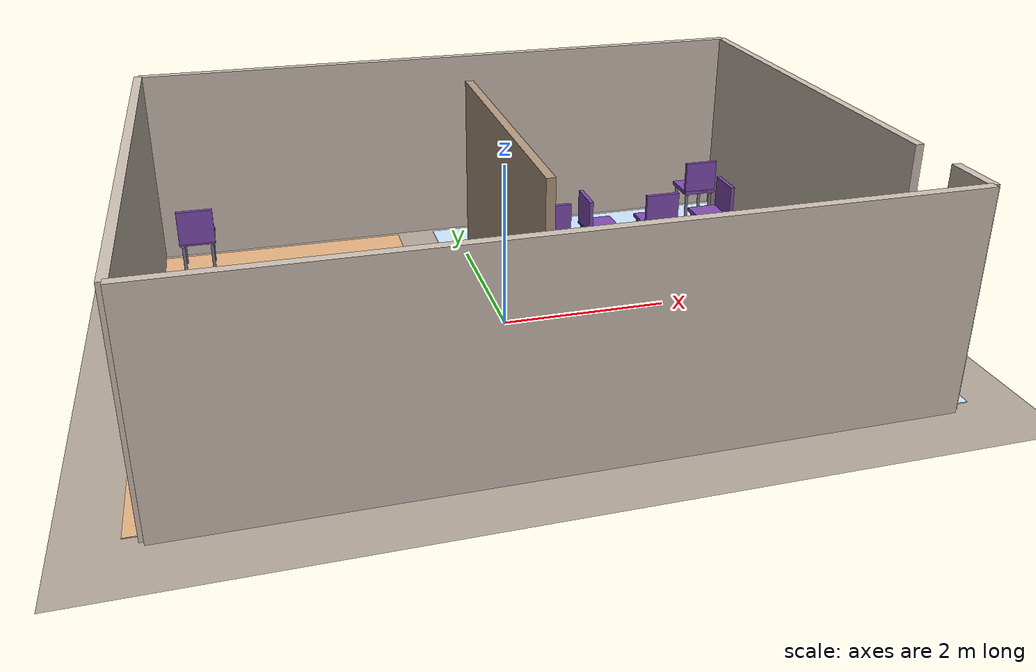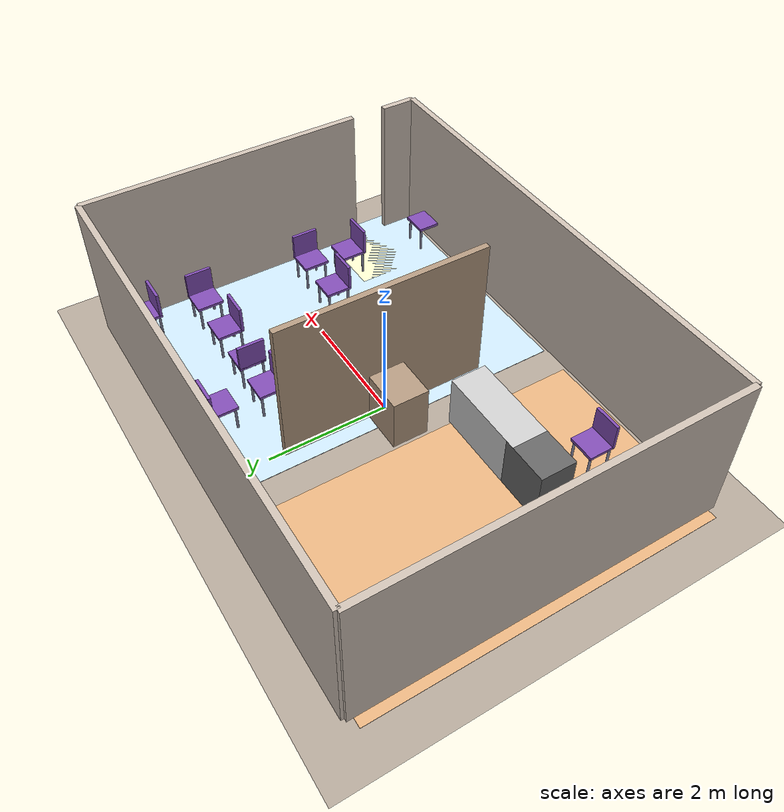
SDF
<?xml version='1.0'?>
<sdf version='1.6'>
  <world name='restaurant_world'>
    <gravity>0 0 -9.8</gravity>
    <magnetic_field>6e-06 2.3e-05 -4.2e-05</magnetic_field>

    <!-- Restaurant lighting -->
    <light name='main_light' type='directional'>
      <cast_shadows>true</cast_shadows>
      <pose>0 0 10 0 0 0</pose>
      <diffuse>0.9 0.85 0.8 1</diffuse>
      <specular>0.3 0.3 0.3 1</specular>
      <attenuation>
        <range>1000</range>
        <constant>0.9</constant>
        <linear>0.01</linear>
        <quadratic>0.001</quadratic>
      </attenuation>
      <direction>-0.3 0.2 -0.9</direction>
    </light>

    <!-- Ambient restaurant lighting -->
    <light name='ambient_light' type='directional'>
      <cast_shadows>false</cast_shadows>
      <pose>0 0 8 0 0 0</pose>
      <diffuse>0.4 0.4 0.5 1</diffuse>
      <specular>0.1 0.1 0.1 1</specular>
      <attenuation>
        <range>1000</range>
        <constant>0.95</constant>
        <linear>0.005</linear>
        <quadratic>0.0005</quadratic>
      </attenuation>
      <direction>0 0 -1</direction>
    </light>

    <!-- Simple ground plane -->
    <model name='ground_plane'>
      <static>true</static>
      <link name='link'>
        <collision name='collision'>
          <geometry>
            <plane>
              <normal>0 0 1</normal>
              <size>100 100</size>
            </plane>
          </geometry>
        </collision>
        <visual name='visual'>
          <geometry>
            <plane>
              <normal>0 0 1</normal>
              <size>100 100</size>
            </plane>
          </geometry>
          <material>
            <ambient>0.8 0.75 0.7 1</ambient>
            <diffuse>0.7 0.65 0.6 1</diffuse>
            <specular>0.1 0.1 0.1 1</specular>
          </material>
        </visual>
      </link>
    </model>

    <!-- Walls: 8m x 6m interior -->
    <model name='walls'>
      <static>true</static>
      <link name='walls_link'>
        <!-- North wall -->
        <collision name='north_col'>
          <geometry><box><size>8 0.1 2.5</size></box></geometry>
          <pose>0 3.0 1.25 0 0 0</pose>
        </collision>
        <visual name='north_vis'>
          <geometry><box><size>8 0.1 2.5</size></box></geometry>
          <pose>0 3.0 1.25 0 0 0</pose>
          <material>
            <ambient>0.9 0.85 0.8 1</ambient>
            <diffuse>0.8 0.75 0.7 1</diffuse>
            <specular>0.1 0.1 0.1 1</specular>
          </material>
        </visual>
        <!-- South wall -->
        <collision name='south_col'>
          <geometry><box><size>8 0.1 2.5</size></box></geometry>
          <pose>0 -3.0 1.25 0 0 0</pose>
        </collision>
        <visual name='south_vis'>
          <geometry><box><size>8 0.1 2.5</size></box></geometry>
          <pose>0 -3.0 1.25 0 0 0</pose>
          <material>
            <ambient>0.9 0.85 0.8 1</ambient>
            <diffuse>0.8 0.75 0.7 1</diffuse>
            <specular>0.1 0.1 0.1 1</specular>
          </material>
        </visual>
        <!-- West wall -->
        <collision name='west_col'>
          <geometry><box><size>0.1 6 2.5</size></box></geometry>
          <pose>-4.0 0 1.25 0 0 0</pose>
        </collision>
        <visual name='west_vis'>
          <geometry><box><size>0.1 6 2.5</size></box></geometry>
          <pose>-4.0 0 1.25 0 0 0</pose>
          <material>
            <ambient>0.9 0.85 0.8 1</ambient>
            <diffuse>0.8 0.75 0.7 1</diffuse>
            <specular>0.1 0.1 0.1 1</specular>
          </material>
        </visual>
        <!-- East wall (with 1.2m doorway at y=-2.5) -->
        <collision name='east_upper_col'>
          <geometry><box><size>0.1 4.8 2.5</size></box></geometry>
          <pose>4.0 0.6 1.25 0 0 0</pose>
        </collision>
        <collision name='east_lower_col'>
          <geometry><box><size>0.1 0.6 2.5</size></box></geometry>
          <pose>4.0 -2.7 1.25 0 0 0</pose>
        </collision>
        <visual name='east_vis_a'>
          <geometry><box><size>0.1 4.8 2.5</size></box></geometry>
          <pose>4.0 0.6 1.25 0 0 0</pose>
          <material>
            <ambient>0.9 0.85 0.8 1</ambient>
            <diffuse>0.8 0.75 0.7 1</diffuse>
            <specular>0.1 0.1 0.1 1</specular>
          </material>
        </visual>
        <visual name='east_vis_b'>
          <geometry><box><size>0.1 0.6 2.5</size></box></geometry>
          <pose>4.0 -2.7 1.25 0 0 0</pose>
          <material>
            <ambient>0.9 0.85 0.8 1</ambient>
            <diffuse>0.8 0.75 0.7 1</diffuse>
            <specular>0.1 0.1 0.1 1</specular>
          </material>
        </visual>
      </link>
    </model>

    <!-- Interior walls and dividers -->
    <!-- Kitchen divider wall (separates kitchen from dining) -->
    <model name='kitchen_divider'>
      <static>true</static>
      <allow_auto_disable>false</allow_auto_disable>
      <link name='divider_link'>
        <kinematic>true</kinematic>
        <collision name='divider_col'>
          <geometry><box><size>0.1 3.5 2.5</size></box></geometry>
          <pose>0 0 1.25 0 0 0</pose>
        </collision>
        <visual name='divider_vis'>
          <geometry><box><size>0.1 3.5 2.5</size></box></geometry>
          <pose>0 0 1.25 0 0 0</pose>
          <material>
            <ambient>0.8 0.7 0.6 1</ambient>
            <diffuse>0.7 0.6 0.5 1</diffuse>
            <specular>0.1 0.1 0.1 1</specular>
          </material>
        </visual>
        <!-- Service opening in divider -->
        <collision name='opening_col_left'>
          <geometry><box><size>0.1 0.8 2.5</size></box></geometry>
          <pose>0 1.35 1.25 0 0 0</pose>
        </collision>
        <collision name='opening_col_right'>
          <geometry><box><size>0.1 0.8 2.5</size></box></geometry>
          <pose>0 -1.35 1.25 0 0 0</pose>
        </collision>
      </link>
    </model>

    <!-- Service counter -->
    <model name='service_counter'>
      <static>true</static>
      <allow_auto_disable>false</allow_auto_disable>
      <link name='counter_link'>
        <kinematic>true</kinematic>
        <collision name='counter_col'>
          <geometry><box><size>1.5 0.6 0.9</size></box></geometry>
          <pose>0 0 0.45 0 0 0</pose>
        </collision>
        <visual name='counter_vis'>
          <geometry><box><size>1.5 0.6 0.9</size></box></geometry>
          <pose>0 0 0.45 0 0 0</pose>
          <material>
            <ambient>0.6 0.5 0.4 1</ambient>
            <diffuse>0.7 0.6 0.5 1</diffuse>
            <specular>0.2 0.2 0.2 1</specular>
          </material>
        </visual>
      </link>
    </model>

    <!-- Zone markers -->
    <!-- Kitchen zone - left side -->
    <model name='kitchen_zone'>
      <static>true</static>
      <allow_auto_disable>false</allow_auto_disable>
      <pose>-2.5 0 -0.01 0 0 0</pose>
      <link name='zone'>
        <kinematic>true</kinematic>
        <visual name='floor_mark'>
          <geometry><box><size>3.4 5.8 0.02</size></box></geometry>
          <pose>0 0 0 0 0 0</pose>
          <material>
            <ambient>0.8 0.6 0.4 1</ambient>
            <diffuse>0.9 0.7 0.5 1</diffuse>
            <specular>0.2 0.2 0.2 1</specular>
          </material>
        </visual>
        <collision name='col'>
          <geometry><box><size>3.4 5.8 0.02</size></box></geometry>
          <pose>0 0 0 0 0 0</pose>
        </collision>
      </link>
    </model>

    <!-- Dining zone - right side -->
    <model name='dining_zone'>
      <static>true</static>
      <allow_auto_disable>false</allow_auto_disable>
      <pose>1.975 0 -0.01 0 0 0</pose>
      <link name='zone'>
        <kinematic>true</kinematic>
        <visual name='floor_mark'>
          <geometry><box><size>4.55 5.8 0.02</size></box></geometry>
          <pose>0 0 0 0 0 0</pose>
          <material>
            <ambient>0.7 0.8 0.9 1</ambient>
            <diffuse>0.8 0.9 1.0 1</diffuse>
            <specular>0.1 0.1 0.1 1</specular>
          </material>
        </visual>
        <collision name='col'>
          <geometry><box><size>4.55 5.8 0.02</size></box></geometry>
          <pose>0 0 0 0 0 0</pose>
        </collision>
      </link>
    </model>

    <!-- Entrance zone - near door -->
    <model name='entrance_zone'>
      <static>true</static>
      <allow_auto_disable>false</allow_auto_disable>
      <pose>3.5 -2 -0.01 0 0 0</pose>
      <link name='zone'>
        <kinematic>true</kinematic>
        <visual name='floor_mark'>
          <geometry><box><size>1.5 1.5 0.02</size></box></geometry>
          <pose>0 0 0 0 0 0</pose>
          <material>
            <ambient>0.9 0.9 0.7 1</ambient>
            <diffuse>1.0 1.0 0.8 1</diffuse>
            <specular>0.1 0.1 0.1 1</specular>
          </material>
        </visual>
        <collision name='col'>
          <geometry><box><size>1.5 1.5 0.02</size></box></geometry>
          <pose>0 0 0 0 0 0</pose>
        </collision>
      </link>
    </model>

    <!-- Dining Area Tables (right side - dining zone) -->
    <include>
      <name>table1</name>
      <uri>file:///home/jao/Desktop/ITDS331_ROS2_FINAL_EXAM_MODULE/ros2/install/restaurant_world/share/restaurant_world/models/table/model.sdf</uri>
      <pose>2.5 1.5 0 0 0 0</pose>
    </include>
    <include>
      <name>table2</name>
      <uri>file:///home/jao/Desktop/ITDS331_ROS2_FINAL_EXAM_MODULE/ros2/install/restaurant_world/share/restaurant_world/models/table/model.sdf</uri>
      <pose>2.5 -0.5 0 0 0 0</pose>
    </include>
    <include>
      <name>table3</name>
      <uri>file:///home/jao/Desktop/ITDS331_ROS2_FINAL_EXAM_MODULE/ros2/install/restaurant_world/share/restaurant_world/models/table/model.sdf</uri>
      <pose>1.0 1.5 0 0 0 0</pose>
    </include>

    <!-- Chairs around dining tables -->
    <!-- Table 1 chairs -->
    <include>
      <name>chair_t1_a</name>
      <uri>file:///home/jao/Desktop/ITDS331_ROS2_FINAL_EXAM_MODULE/ros2/install/restaurant_world/share/restaurant_world/models/chair/model.sdf</uri>
      <pose>3.3 1.5 0 0 0 1.57</pose>
    </include>
    <include>
      <name>chair_t1_b</name>
      <uri>file:///home/jao/Desktop/ITDS331_ROS2_FINAL_EXAM_MODULE/ros2/install/restaurant_world/share/restaurant_world/models/chair/model.sdf</uri>
      <pose>1.7 1.5 0 0 0 -1.57</pose>
    </include>
    <!-- Table 2 chairs -->
    <include>
      <name>chair_t2_a</name>
      <uri>file:///home/jao/Desktop/ITDS331_ROS2_FINAL_EXAM_MODULE/ros2/install/restaurant_world/share/restaurant_world/models/chair/model.sdf</uri>
      <pose>3.3 -0.5 0 0 0 1.57</pose>
    </include>
    <include>
      <name>chair_t2_b</name>
      <uri>file:///home/jao/Desktop/ITDS331_ROS2_FINAL_EXAM_MODULE/ros2/install/restaurant_world/share/restaurant_world/models/chair/model.sdf</uri>
      <pose>1.7 -0.5 0 0 0 -1.57</pose>
    </include>
    <!-- Table 3 chairs -->
    <include>
      <name>chair_t3_a</name>
      <uri>file:///home/jao/Desktop/ITDS331_ROS2_FINAL_EXAM_MODULE/ros2/install/restaurant_world/share/restaurant_world/models/chair/model.sdf</uri>
      <pose>1.0 2.3 0 0 0 3.14</pose>
    </include>
    <include>
      <name>chair_t3_b</name>
      <uri>file:///home/jao/Desktop/ITDS331_ROS2_FINAL_EXAM_MODULE/ros2/install/restaurant_world/share/restaurant_world/models/chair/model.sdf</uri>
      <pose>1.0 0.7 0 0 0 0</pose>
    </include>
    <!-- Kitchen Equipment -->
    <!-- Stove/Oven -->
    <model name='kitchen_stove'>
      <static>true</static>
      <pose>-2.5 -1.0 0 0 0 0</pose>
      <link name='stove_link'>
        <collision name='stove_col'>
          <geometry><box><size>0.8 0.6 0.9</size></box></geometry>
          <pose>0 0 0.45 0 0 0</pose>
        </collision>
        <visual name='stove_vis'>
          <geometry><box><size>0.8 0.6 0.9</size></box></geometry>
          <pose>0 0 0.45 0 0 0</pose>
          <material>
            <ambient>0.3 0.3 0.3 1</ambient>
            <diffuse>0.4 0.4 0.4 1</diffuse>
            <specular>0.8 0.8 0.8 1</specular>
          </material>
        </visual>
      </link>
    </model>

    <!-- Kitchen counter -->
    <model name='kitchen_counter'>
      <static>true</static>
      <pose>-1.5 -1.0 0 0 0 0</pose>
      <link name='counter_link'>
        <collision name='counter_col'>
          <geometry><box><size>1.5 0.6 0.9</size></box></geometry>
          <pose>0 0 0.45 0 0 0</pose>
        </collision>
        <visual name='counter_vis'>
          <geometry><box><size>1.5 0.6 0.9</size></box></geometry>
          <pose>0 0 0.45 0 0 0</pose>
          <material>
            <ambient>0.7 0.7 0.7 1</ambient>
            <diffuse>0.8 0.8 0.8 1</diffuse>
            <specular>0.2 0.2 0.2 1</specular>
          </material>
        </visual>
      </link>
    </model>
    <!-- Entrance area plants -->
    <include>
      <name>plant_entrance_left</name>
      <uri>file:///home/jao/Desktop/ITDS331_ROS2_FINAL_EXAM_MODULE/ros2/install/restaurant_world/share/restaurant_world/models/plant_pot/model.sdf</uri>
      <pose>3.2 -1.2 0 0 0 0</pose>
    </include>
    <include>
      <name>plant_entrance_right</name>
      <uri>file:///home/jao/Desktop/ITDS331_ROS2_FINAL_EXAM_MODULE/ros2/install/restaurant_world/share/restaurant_world/models/plant_pot/model.sdf</uri>
      <pose>3.2 -2.8 0 0 0 0</pose>
    </include>
    <!-- Corner decorative plants -->
    <include>
      <name>plant_corner_ne</name>
      <uri>file:///home/jao/Desktop/ITDS331_ROS2_FINAL_EXAM_MODULE/ros2/install/restaurant_world/share/restaurant_world/models/plant_pot/model.sdf</uri>
      <pose>3.5 2.5 0 0 0 0</pose>
    </include>
    <include>
      <name>plant_corner_nw</name>
      <uri>file:///home/jao/Desktop/ITDS331_ROS2_FINAL_EXAM_MODULE/ros2/install/restaurant_world/share/restaurant_world/models/plant_pot/model.sdf</uri>
      <pose>-3.5 2.5 0 0 0 0</pose>
    </include>
    <!-- Kitchen area plant -->
    <include>
      <name>plant_kitchen</name>
      <uri>file:///home/jao/Desktop/ITDS331_ROS2_FINAL_EXAM_MODULE/ros2/install/restaurant_world/share/restaurant_world/models/plant_pot/model.sdf</uri>
      <pose>-2.5 -2.0 0 0 0 0</pose>
    </include>

  </world>
</sdf>

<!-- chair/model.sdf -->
<sdf version='1.6'>
  <model name='chair'>
    <static>true</static>
    <link name='chair_link'>
      <!-- seat -->
      <collision name='col_seat'>
        <geometry><box><size>0.45 0.45 0.05</size></box></geometry>
        <pose>0 0 0.45 0 0 0</pose>
      </collision>
      <visual name='vis_seat'>
        <geometry><box><size>0.45 0.45 0.05</size></box></geometry>
        <pose>0 0 0.45 0 0 0</pose>
        <material>
          <ambient>0.4 0.2 0.6 1</ambient>
          <diffuse>0.5 0.3 0.7 1</diffuse>
          <specular>0.1 0.1 0.1 1</specular>
        </material>
      </visual>
      <!-- backrest -->
      <collision name='col_back'>
        <geometry><box><size>0.45 0.05 0.45</size></box></geometry>
        <pose>0 -0.2 0.67 0 0 0</pose>
      </collision>
      <visual name='vis_back'>
        <geometry><box><size>0.45 0.05 0.45</size></box></geometry>
        <pose>0 -0.2 0.67 0 0 0</pose>
        <material>
          <ambient>0.4 0.2 0.6 1</ambient>
          <diffuse>0.5 0.3 0.7 1</diffuse>
          <specular>0.1 0.1 0.1 1</specular>
        </material>
      </visual>
      <collision name='col_leg1'>
        <geometry><cylinder><radius>0.02</radius><length>0.4</length></cylinder></geometry>
        <pose>0.18 0.18 0.2 0 0 0</pose>
      </collision>
      <visual name='vis_leg1'>
        <geometry><cylinder><radius>0.02</radius><length>0.4</length></cylinder></geometry>
        <pose>0.18 0.18 0.2 0 0 0</pose>
        <material>
          <ambient>0.6 0.6 0.7 1</ambient>
          <diffuse>0.5 0.5 0.6 1</diffuse>
          <specular>0.8 0.8 0.9 1</specular>
        </material>
      </visual>
      <collision name='col_leg2'>
        <geometry><cylinder><radius>0.02</radius><length>0.4</length></cylinder></geometry>
        <pose>-0.18 0.18 0.2 0 0 0</pose>
      </collision>
      <visual name='vis_leg2'>
        <geometry><cylinder><radius>0.02</radius><length>0.4</length></cylinder></geometry>
        <pose>-0.18 0.18 0.2 0 0 0</pose>
        <material>
          <ambient>0.6 0.6 0.7 1</ambient>
          <diffuse>0.5 0.5 0.6 1</diffuse>
          <specular>0.8 0.8 0.9 1</specular>
        </material>
      </visual>
      <collision name='col_leg3'>
        <geometry><cylinder><radius>0.02</radius><length>0.4</length></cylinder></geometry>
        <pose>0.18 -0.18 0.2 0 0 0</pose>
      </collision>
      <visual name='vis_leg3'>
        <geometry><cylinder><radius>0.02</radius><length>0.4</length></cylinder></geometry>
        <pose>0.18 -0.18 0.2 0 0 0</pose>
        <material>
          <ambient>0.6 0.6 0.7 1</ambient>
          <diffuse>0.5 0.5 0.6 1</diffuse>
          <specular>0.8 0.8 0.9 1</specular>
        </material>
      </visual>
      <collision name='col_leg4'>
        <geometry><cylinder><radius>0.02</radius><length>0.4</length></cylinder></geometry>
        <pose>-0.18 -0.18 0.2 0 0 0</pose>
      </collision>
      <visual name='vis_leg4'>
        <geometry><cylinder><radius>0.02</radius><length>0.4</length></cylinder></geometry>
        <pose>-0.18 -0.18 0.2 0 0 0</pose>
        <material>
          <ambient>0.6 0.6 0.7 1</ambient>
          <diffuse>0.5 0.5 0.6 1</diffuse>
          <specular>0.8 0.8 0.9 1</specular>
        </material>
      </visual>
    </link>
  </model>
</sdf>
